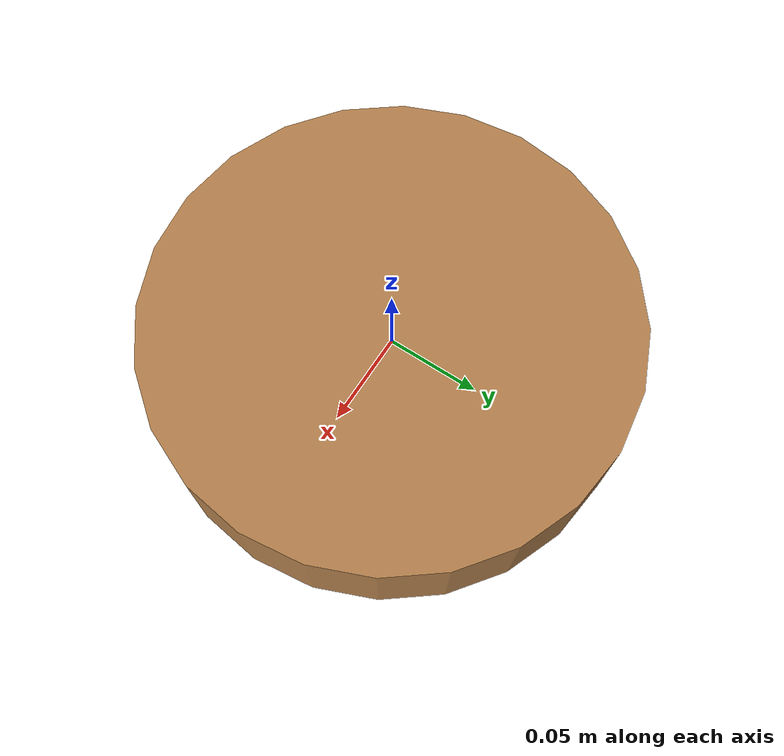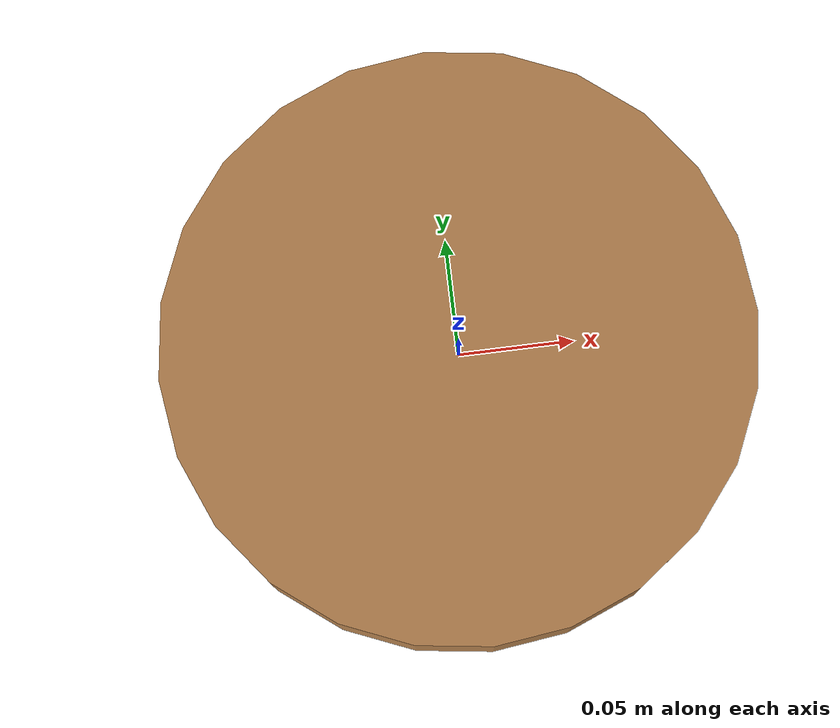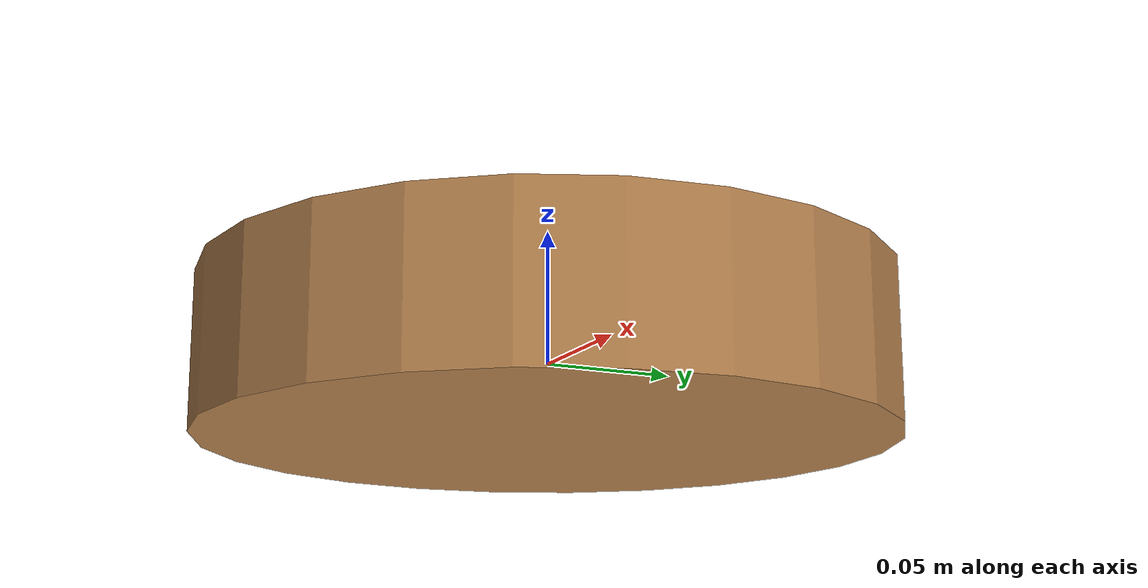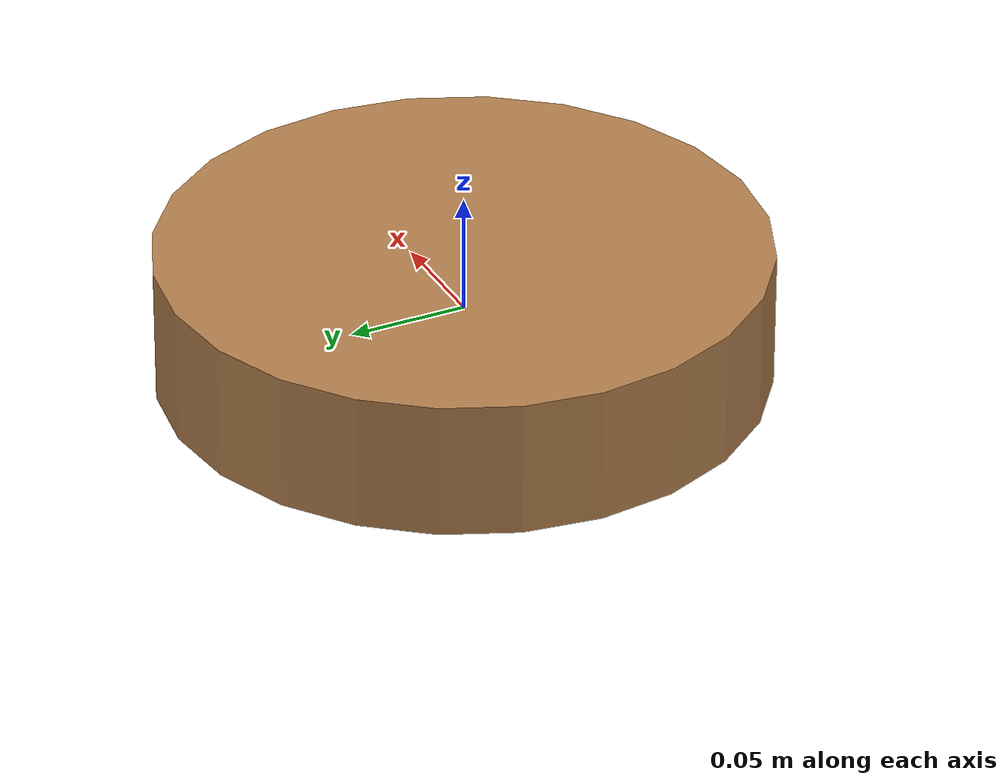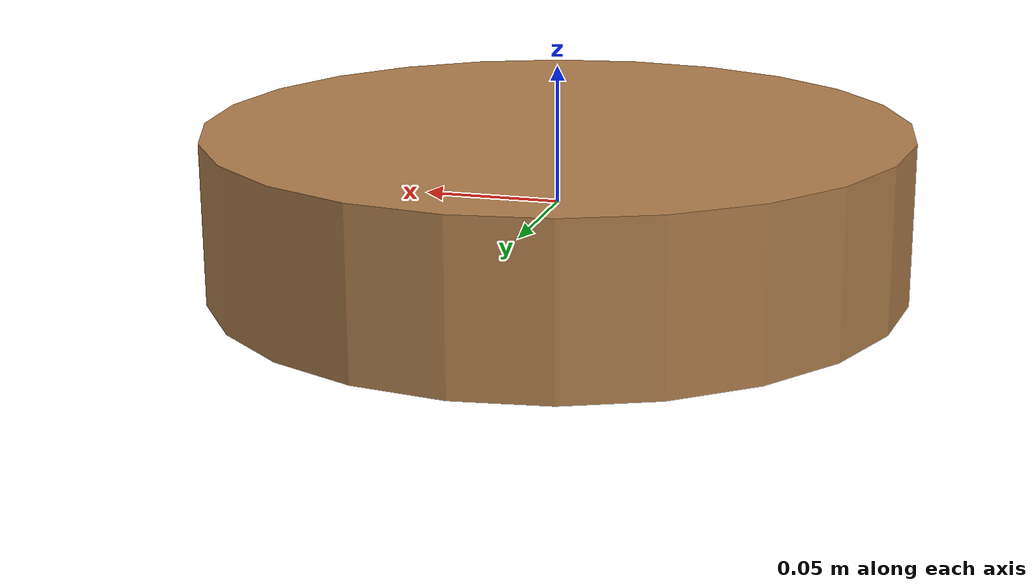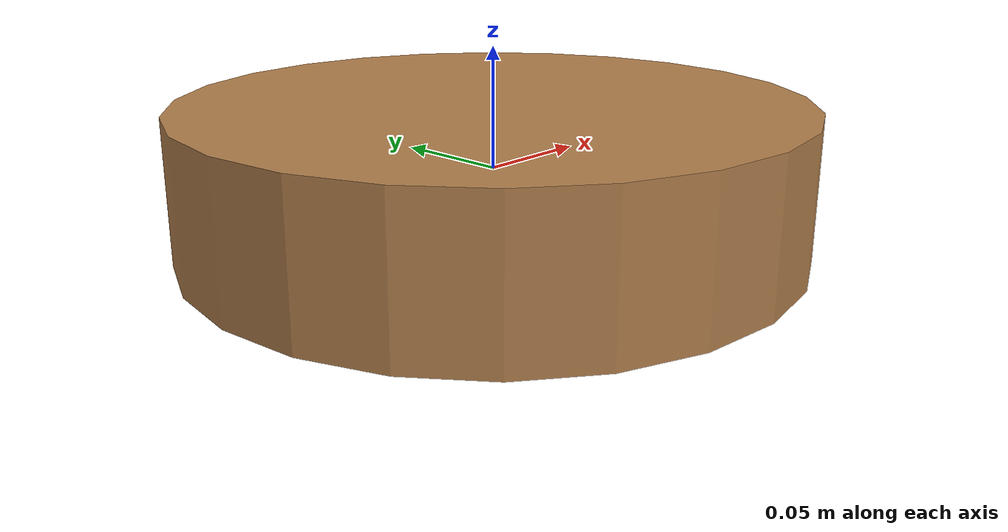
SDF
<?xml version="1.0" ?>
<sdf version="1.4">
	<model name="saucepan">
		<link name="link">
			<inertial>
				<mass>0.1</mass>
			</inertial>
			<collision name="collision">
				<geometry>
					<cylinder>
						<radius>0.127</radius>
						<length>0.058</length>
					</cylinder>
				</geometry>
			</collision>
			<visual name="visual">
				<geometry>
					<cylinder>
						<radius>0.127</radius>
						<length>0.058</length>
					</cylinder>
				</geometry>
				<material>
					<script>
						<uri>file://media/materials/scripts/gazebo.material</uri>
						<name>Gazebo/Wood</name>
					</script>
				</material>
			</visual>
		</link>
	</model>
</sdf>
